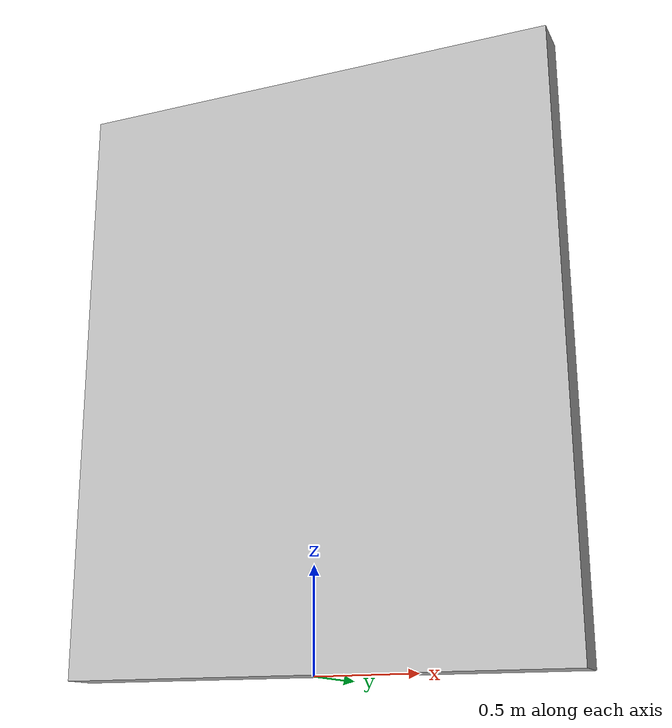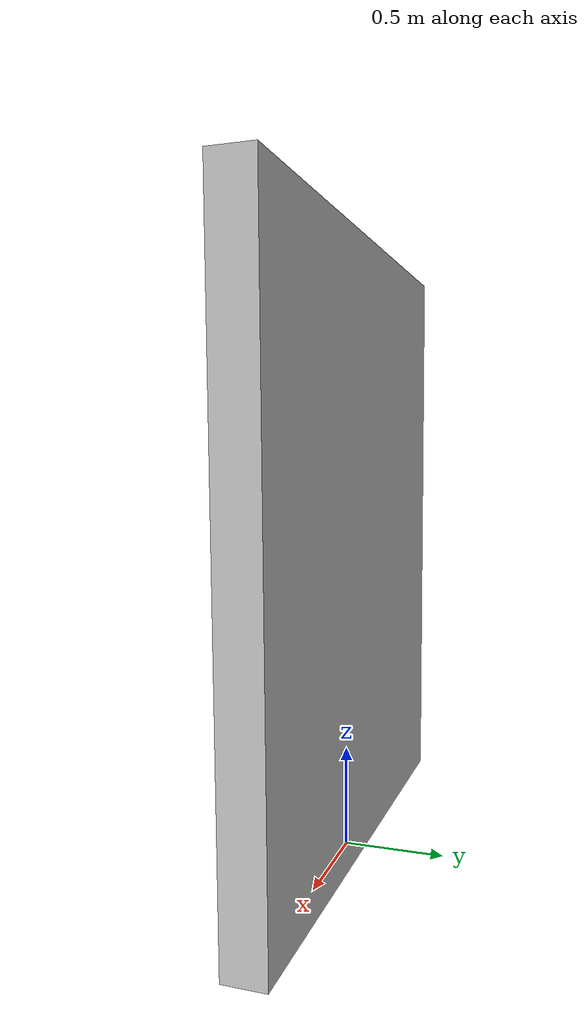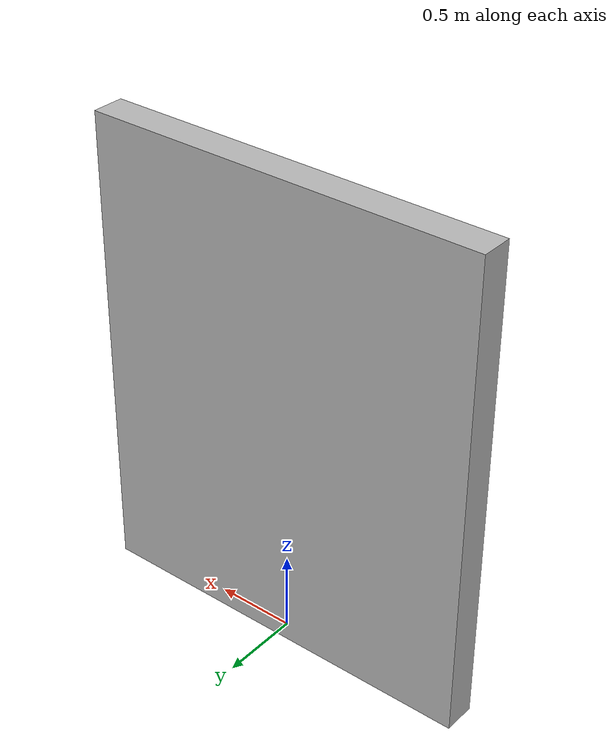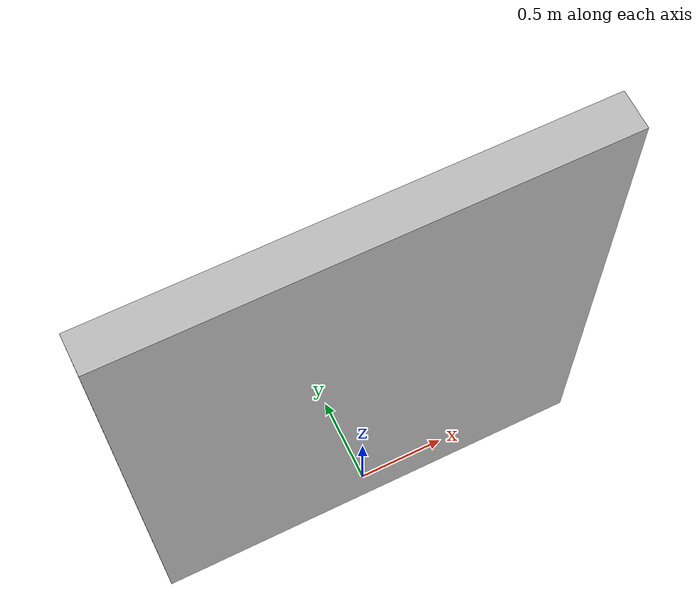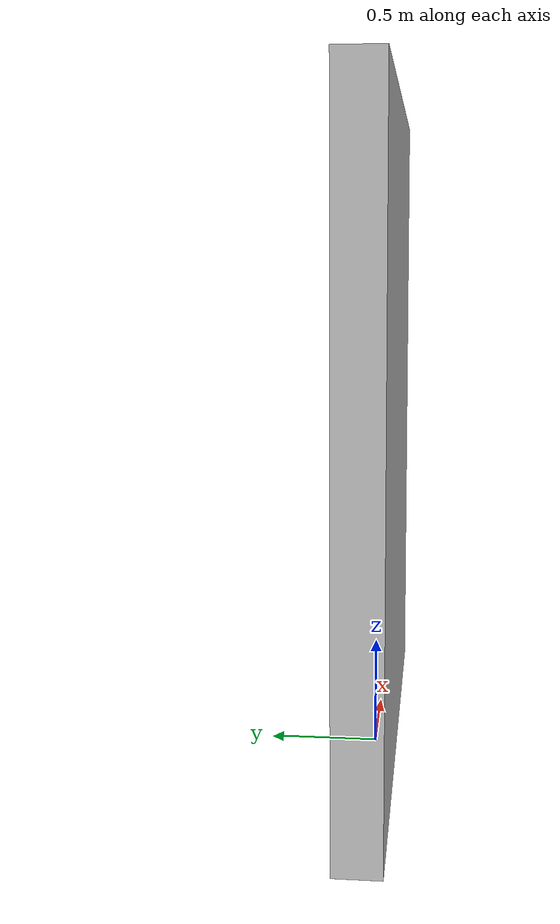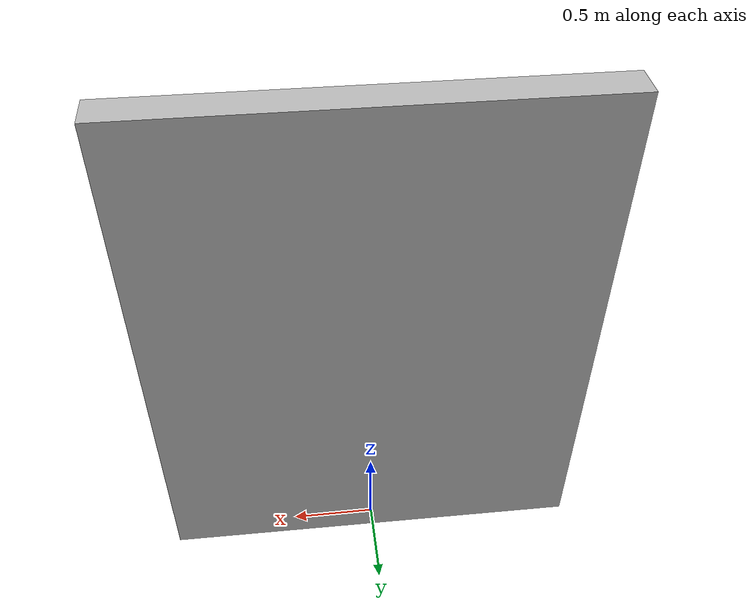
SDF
<?xml version="1.0"?>
<sdf version="1.4">
    <model name="model_test">
        <pose>0 0 1.5 0 0 0</pose>
        <link name="1_link">
            <collision name="1_collision">
                <geometry>
                    <box>
                        <size>2.5 0.2 3</size>
                    </box>
                </geometry>
            </collision>
            <visual name="visual">
                <geometry>
                <box>
                    <size>2.5 0.2 3</size>
                </box>
                </geometry>
            </visual>
        </link>
    </model>
</sdf>
